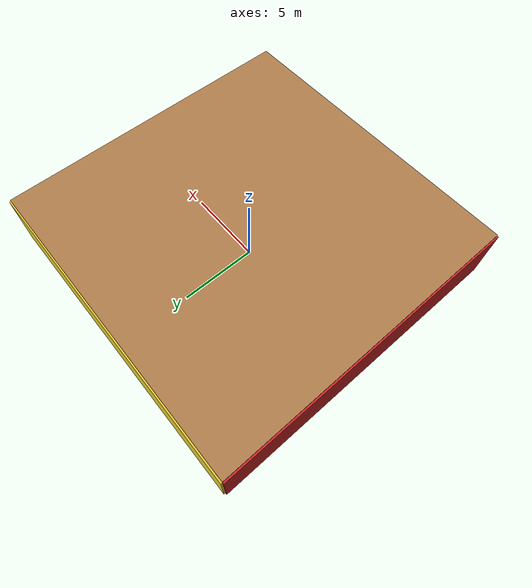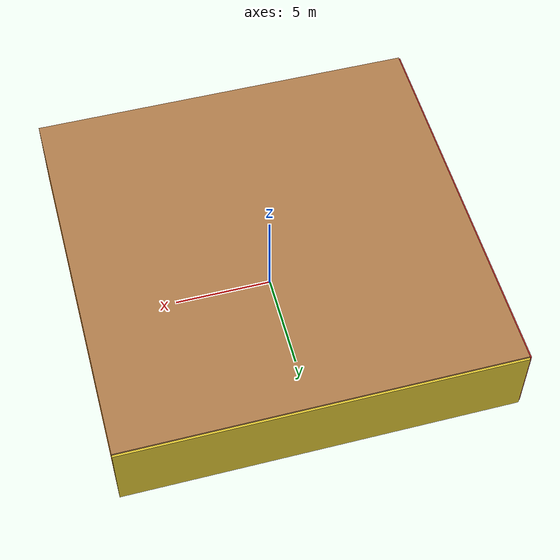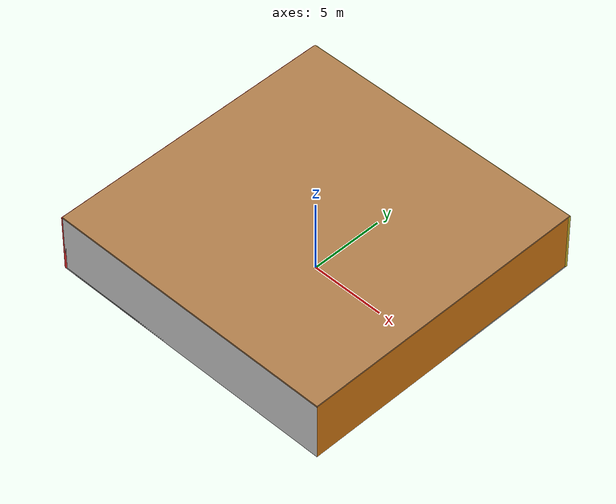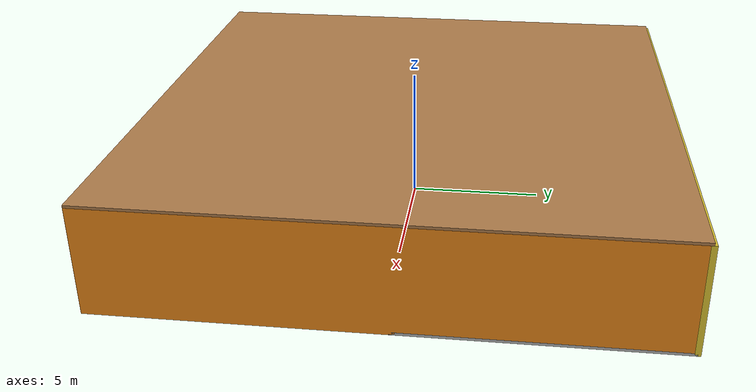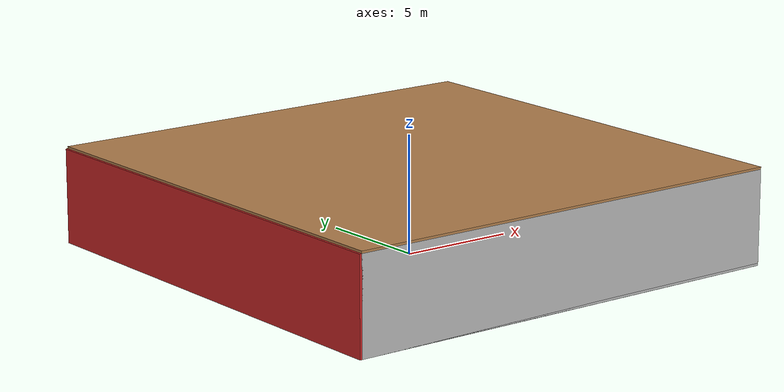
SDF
<sdf version="1.4">
 <world name="default">
  <physics type="ode">
   <max_step_size>0.001</max_step_size>
   <real_time_factor>1</real_time_factor>
   <real_time_update_rate>1000</real_time_update_rate>
   <gravity>0 0 -9.8</gravity>
  </physics>
  <scene><ambient>0.4 0.4 0.4 1</ambient><background>0.7 0.7 0.7 1</background><shadows>1</shadows></scene>
  <model name="Surrounding">
   <static>1</static>
   <link name="Ceiling">
    <collision name="Ceiling_Collision"><geometry><box><size>20 20 0.1</size></box></geometry></collision>
    <visual name="Ceiling_Visual">
     <geometry><box><size>20 20 0.1</size></box></geometry>
     <material>
      <script><uri>file://media/materials/scripts/gazebo.material</uri><name>Gazebo/WoodFloor</name></script>
     </material>
    </visual>
    <pose>0 0 4.05 0 0 0</pose>
   </link>
   <link name="Wall_South">
    <collision name="Wall_South_Collision">
     <geometry><box><size>20 0 4</size></box></geometry>
     <pose>0 0 2 0 -0 0</pose>
    </collision>
    <visual name="Wall_South_Visual">
     <pose>0 0 2 0 -0 0</pose>
     <geometry><box><size>20 0 4</size></box></geometry>
     <material>
      <script><uri>file://media/materials/scripts/gazebo.material</uri><name>Gazebo/PioneerBody</name></script>
     </material>
    </visual>
    <velocity_decay><linear>0</linear><angular>0</angular></velocity_decay>
    <pose>0 -10 0 0 -0 0</pose>
   </link>
   <link name="Wall_East">
    <collision name="Wall_21_Collision">
     <geometry><box><size>20 0 4</size></box></geometry>
     <pose>0 0 2 0 -0 0</pose>
    </collision>
    <visual name="Wall_21_Visual">
     <pose>0 0 2 0 -0 0</pose>
     <geometry><box><size>20 0 4</size></box></geometry>
     <material>
      <script><uri>file://media/materials/scripts/gazebo.material</uri><name>Gazebo/Orange</name></script>
     </material>
    </visual>
    <velocity_decay><linear>0</linear><angular>0</angular></velocity_decay>
    <pose>10 0 0 0 -0 1.5708</pose>
   </link>
   <link name="Wall_North">
    <collision name="Wall_22_Collision">
     <geometry><box><size>20 0.2 4</size></box></geometry>
     <pose>0 0 2 0 -0 0</pose>
    </collision>
    <visual name="Wall_22_Visual">
     <pose>0 0 2 0 -0 0</pose>
     <geometry><box><size>20 0.2 4</size></box></geometry>
     <material>
      <script><uri>file://media/materials/scripts/gazebo.material</uri><name>Gazebo/ZincYellow</name></script>
     </material>
    </visual>
    <velocity_decay><linear>0</linear><angular>0</angular></velocity_decay>
    <pose>0 10 0 0 -0 0</pose>
   </link>
   <link name="Wall_West">
    <collision name="Wall_23_Collision">
     <geometry><box><size>20 0.2 4</size></box></geometry>
     <pose>0 0 2 0 -0 0</pose>
    </collision>
    <visual name="Wall_23_Visual">
     <pose>0 0 2 0 -0 0</pose>
     <geometry><box><size>20 0.2 4</size></box></geometry>
     <material>
      <script><uri>file://media/materials/scripts/gazebo.material</uri><name>Gazebo/RedBright</name></script>
     </material>
    </visual>
    <velocity_decay><linear>0</linear><angular>0</angular></velocity_decay>
    <pose>-10 0 0 0 0 -1.5708</pose>
   </link>
   <link name="Ground_link">
    <collision name="collision">
     <pose>0 0 .05 0 -0 0</pose>
     <geometry><box><size>20 20 0.1</size></box></geometry>
    </collision>
    <visual name="visual">
     <pose>0 0 .05 0 -0 0</pose>
     <geometry><box><size>20 20 0.1</size></box></geometry>
     <material>
      <script><uri>file://media/materials/scripts/gazebo.material</uri><name>Gazebo/Pioneer2Body</name></script>
     </material>
    </visual>
   </link>
   <static>1</static>
  </model>
  <spherical_coordinates>
   <surface_model>EARTH_WGS84</surface_model>
   <latitude_deg>0</latitude_deg>
   <longitude_deg>0</longitude_deg>
   <elevation>0</elevation>
   <heading_deg>0</heading_deg>
  </spherical_coordinates>
  <light name="lightball_0" type="diffuse">
   <diffuse>0.8 0.8 0.8 1</diffuse>
   <specular>0.2 0.2 0.2 1</specular>
   <attenuation>
    <range>100</range>
    <constant>0.7</constant>
    <linear>0.01</linear>
    <quadratic>0.001</quadratic>
   </attenuation>
   <direction>-0.5 0.1 -0.9</direction>
   <pose>-5.45118216523 -6.58985745221 3.68598259633 0 0 0</pose>
  </light>
  <light name="lightball_1" type="diffuse">
   <diffuse>0.8 0.8 0.8 1</diffuse>
   <specular>0.2 0.2 0.2 1</specular>
   <attenuation>
    <range>100</range>
    <constant>0.7</constant>
    <linear>0.01</linear>
    <quadratic>0.001</quadratic>
   </attenuation>
   <direction>-0.5 0.1 -0.9</direction>
   <pose>-8.2207409239 3.88018321329 2.6270943374 0 0 0</pose>
  </light>
  <light name="lightball_2" type="diffuse">
   <diffuse>0.8 0.8 0.8 1</diffuse>
   <specular>0.2 0.2 0.2 1</specular>
   <attenuation>
    <range>100</range>
    <constant>0.7</constant>
    <linear>0.01</linear>
    <quadratic>0.001</quadratic>
   </attenuation>
   <direction>-0.5 0.1 -0.9</direction>
   <pose>7.95989786165 7.44421511109 3.78882625291 0 0 0</pose>
  </light>
  <light name="lightball_3" type="diffuse">
   <diffuse>0.8 0.8 0.8 1</diffuse>
   <specular>0.2 0.2 0.2 1</specular>
   <attenuation>
    <range>100</range>
    <constant>0.7</constant>
    <linear>0.01</linear>
    <quadratic>0.001</quadratic>
   </attenuation>
   <direction>-0.5 0.1 -0.9</direction>
   <pose>-3.97760880634 0.343162582029 3.31153154876 0 0 0</pose>
  </light>
  <light name="lightball_4" type="diffuse">
   <diffuse>0.8 0.8 0.8 1</diffuse>
   <specular>0.2 0.2 0.2 1</specular>
   <attenuation>
    <range>100</range>
    <constant>0.7</constant>
    <linear>0.01</linear>
    <quadratic>0.001</quadratic>
   </attenuation>
   <direction>-0.5 0.1 -0.9</direction>
   <pose>6.90180538089 -1.41246254442 1.69713332366 0 0 0</pose>
  </light>
  <light name="lightball_5" type="diffuse">
   <diffuse>0.8 0.8 0.8 1</diffuse>
   <specular>0.2 0.2 0.2 1</specular>
   <attenuation>
    <range>100</range>
    <constant>0.7</constant>
    <linear>0.01</linear>
    <quadratic>0.001</quadratic>
   </attenuation>
   <direction>-0.5 0.1 -0.9</direction>
   <pose>8.22021685377 0.59454969342 3.32174207648 0 0 0</pose>
  </light>
  <light name="lightball_6" type="diffuse">
   <diffuse>0.8 0.8 0.8 1</diffuse>
   <specular>0.2 0.2 0.2 1</specular>
   <attenuation>
    <range>100</range>
    <constant>0.7</constant>
    <linear>0.01</linear>
    <quadratic>0.001</quadratic>
   </attenuation>
   <direction>-0.5 0.1 -0.9</direction>
   <pose>7.01732595873 8.03534211438 2.55839665882 0 0 0</pose>
  </light>
  <include>
   <uri>model://construction_cone</uri>
   <pose>-8.29158738718 -6.69815074154 0 0 0 1.47586668204</pose>
  </include>
  <include>
   <uri>model://robocup_3Dsim_goal</uri>
   <pose>-8.0933489487 0.786913857767 0 0 0 2.32267072018</pose>
  </include>
  <include><uri>model://table</uri><pose>-7.82735389828 5.46256438809 0 0 0 2.79351127055</pose></include>
  <include>
   <uri>model://robocup_3Dsim_goal</uri>
   <pose>-3.3704613528 -8.6120000845 0 0 0 3.06876772796</pose>
  </include>
  <include>
   <uri>model://textured_shapes</uri>
   <pose>-5.2262462995 -5.17125368227 0 0 0 1.31693297301</pose>
  </include>
  <include>
   <uri>model://textured_shapes</uri>
   <pose>-1.62165526634 -4.22613220528 0 0 0 1.43842136008</pose>
  </include>
  <include>
   <uri>model://construction_cone</uri>
   <pose>-1.31191726352 -2.33416105494 0 0 0 1.19708754912</pose>
  </include>
  <include>
   <uri>model://construction_cone</uri>
   <pose>0.800105766222 1.99241054148 0 0 0 2.00246363214</pose>
  </include>
  <include><uri>model://table</uri><pose>4.84942363776 2.14025685993 0 0 0 1.16356718556</pose></include>
 </world>
</sdf>

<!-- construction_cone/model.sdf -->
<sdf version="1.5">
  <model name="Construction Cone">
    <link name="link">
      <collision name="collision">
        <geometry>
          <mesh>
            <scale>10 10 10</scale>
            <uri>file://isr-testbed/construction_cone/meshes/construction_cone.dae</uri>
          </mesh>
        </geometry>
      </collision>
      <visual name="visual">
        <geometry>
          <mesh>
            <scale>10 10 10</scale>
            <uri>file://isr-testbed/construction_cone/meshes/construction_cone.dae</uri>
          </mesh>
        </geometry>
      </visual>
    </link>
  </model>
</sdf>

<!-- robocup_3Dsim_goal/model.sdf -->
<sdf version="1.5">
  <model name="robocup_3d_goal">
    <static>true</static>
    <link name="left_post">
      <pose>0 1.05 0.45 0 0 0</pose>
      <collision name="collision">
        <geometry>
          <cylinder>
            <radius>0.05</radius>
            <length>0.9</length>
          </cylinder>
        </geometry>
      </collision>
      <visual name="visual">
        <geometry>
          <cylinder>
            <radius>0.05</radius>
            <length>0.9</length>
          </cylinder>
        </geometry>
        <material>
          <script>
            <uri>file://media/materials/scripts/gazebo.material</uri>
            <name>Gazebo/ZincYellow</name>
          </script>
        </material>
      </visual>
    </link>
    <link name="left_support_horiz_lower">
      <pose>0.30 1.05 0.01 0 0 0</pose>
      <collision name="collision">
        <geometry>
          <box>
            <size>0.50 0.02 0.02</size>
          </box>
        </geometry>
      </collision>
      <visual name="visual">
        <geometry>
          <box>
            <size>0.50 0.02 0.02</size>
          </box>
        </geometry>
        <material>
          <script>
            <uri>file://media/materials/scripts/gazebo.material</uri>
            <name>Gazebo/White</name>
          </script>
        </material>
      </visual>
    </link>
    <link name="left_support_horiz_upper">
      <pose>0.30 1.05 0.79 0 0 0</pose>
      <collision name="collision">
        <geometry>
          <box>
            <size>0.50 0.02 0.02</size>
          </box>
        </geometry>
      </collision>
      <visual name="visual">
        <geometry>
          <box>
            <size>0.50 0.02 0.02</size>
          </box>
        </geometry>
        <material>
          <script>
            <uri>file://media/materials/scripts/gazebo.material</uri>
            <name>Gazebo/White</name>
          </script>
        </material>
      </visual>
    </link>
    <link name="left_support_vertical">
      <pose>0.56 1.05 0.4 0 1.5708 0</pose>
      <collision name="collision">
        <geometry>
          <box>
            <size>0.80 0.02 0.02</size>
          </box>
        </geometry>
      </collision>
      <visual name="visual">
        <geometry>
          <box>
            <size>0.80 0.02 0.02</size>
          </box>
        </geometry>
        <material>
          <script>
            <uri>file://media/materials/scripts/gazebo.material</uri>
            <name>Gazebo/White</name>
          </script>
        </material>
      </visual>
    </link>
    <link name="right_support_horiz_lower">
      <pose>0.30 -1.05 0.01 0 0 0</pose>
      <collision name="collision">
        <geometry>
          <box>
            <size>0.50 0.02 0.02</size>
          </box>
        </geometry>
      </collision>
      <visual name="visual">
        <geometry>
          <box>
            <size>0.50 0.02 0.02</size>
          </box>
        </geometry>
        <material>
          <script>
            <uri>file://media/materials/scripts/gazebo.material</uri>
            <name>Gazebo/White</name>
          </script>
        </material>
      </visual>
    </link>
    <link name="right_support_horiz_upper">
      <pose>0.30 -1.05 0.79 0 0 0</pose>
      <collision name="collision">
        <geometry>
          <box>
            <size>0.50 0.02 0.02</size>
          </box>
        </geometry>
      </collision>
      <visual name="visual">
        <geometry>
          <box>
            <size>0.50 0.02 0.02</size>
          </box>
        </geometry>
        <material>
          <script>
            <uri>file://media/materials/scripts/gazebo.material</uri>
            <name>Gazebo/White</name>
          </script>
        </material>
      </visual>
    </link>
    <link name="right_support_vertical">
      <pose>0.56 -1.05 0.4 0 1.5708 0</pose>
      <collision name="collision">
        <geometry>
          <box>
            <size>0.80 0.02 0.02</size>
          </box>
        </geometry>
      </collision>
      <visual name="visual">
        <geometry>
          <box>
            <size>0.80 0.02 0.02</size>
          </box>
        </geometry>
        <material>
          <script>
            <uri>file://media/materials/scripts/gazebo.material</uri>
            <name>Gazebo/White</name>
          </script>
        </material>
      </visual>
    </link>
    <link name="center_support_horiz_lower">
      <pose>0.56 0 0.01 0 1.5708 0</pose>
      <collision name="collision">
        <geometry>
          <box>
            <size>0.02 2.08 0.02</size>
          </box>
        </geometry>
      </collision>
      <visual name="visual">
        <geometry>
          <box>
            <size>0.02 2.08 0.02</size>
          </box>
        </geometry>
        <material>
          <script>
            <uri>file://media/materials/scripts/gazebo.material</uri>
            <name>Gazebo/White</name>
          </script>
        </material>
      </visual>
    </link>
    <link name="center_support_horiz_upper">
      <pose>0.56 0 0.79 0 1.5708 0</pose>
      <collision name="collision">
        <geometry>
          <box>
            <size>0.02 2.08 0.02</size>
          </box>
        </geometry>
      </collision>
      <visual name="visual">
        <geometry>
          <box>
            <size>0.02 2.08 0.02</size>
          </box>
        </geometry>
        <material>
          <script>
            <uri>file://media/materials/scripts/gazebo.material</uri>
            <name>Gazebo/White</name>
          </script>
        </material>
      </visual>
    </link>
    <link name="right_post">
      <pose>0 -1.05 0.45 0 0 0</pose>
      <collision name="collision">
        <geometry>
          <cylinder>
            <radius>0.05</radius>
            <length>0.9</length>
          </cylinder>
        </geometry>
      </collision>
      <visual name="visual">
        <geometry>
          <cylinder>
            <radius>0.05</radius>
            <length>0.9</length>
          </cylinder>
        </geometry>
        <material>
          <script>
            <uri>file://media/materials/scripts/gazebo.material</uri>
            <name>Gazebo/ZincYellow</name>
          </script>
        </material>
      </visual>
    </link>
    <link name="crossbar">
      <pose>0 0 0.85 1.57 1.57 0</pose>
      <collision name="collision">
        <geometry>
          <cylinder>
            <radius>0.05</radius>
            <length>2.0</length>
          </cylinder>
        </geometry>
      </collision>
      <visual name="visual">
        <geometry>
          <cylinder>
            <radius>0.05</radius>
            <length>2.0</length>
          </cylinder>
        </geometry>
        <material>
          <script>
            <uri>file://media/materials/scripts/gazebo.material</uri>
            <name>Gazebo/ZincYellow</name>
          </script>
        </material>
      </visual>
    </link>
    <link name="center_net">
      <pose>0.56 0 0.40 0 0 0</pose>
      <collision name="collision">
        <geometry>
          <box>
            <size>0.01 2.1 0.80</size>
          </box>
        </geometry>
      </collision>
      <visual name="visual">
        <geometry>
          <box>
            <size>0.01 2.1 0.80</size>
          </box>
        </geometry>
        <material>
          <script>
            <uri>model://../model_source/models/robocup09_spl_field/materials/scripts/</uri>
            <uri>model://../model_source/models/robocup09_spl_field/materials/textures/</uri>
            <name>RoboCup/Net</name>
          </script>
        </material>
      </visual>
    </link>
    <link name="left_net">
      <pose>0.30 1.05 0.40 0 0 0</pose>
      <collision name="collision">
        <geometry>
          <box>
            <size>0.50 0.01 0.76</size>
          </box>
        </geometry>
      </collision>
      <visual name="visual">
        <geometry>
          <box>
            <size>0.50 0.01 0.76</size>
          </box>
        </geometry>
        <material>
          <script>
            <uri>model://../model_source/models/robocup09_spl_field/materials/scripts/</uri>
            <uri>model://../model_source/models/robocup09_spl_field/materials/textures/</uri>
            <name>RoboCup/Net</name>
          </script>
        </material>
      </visual>
    </link>
    <link name="right_net">
      <pose>0.30 -1.05 0.40 0 0 0</pose>
      <collision name="collision">
        <geometry>
          <box>
            <size>0.50 0.01 0.76</size>
          </box>
        </geometry>
      </collision>
      <visual name="visual">
        <geometry>
          <box>
            <size>0.50 0.01 0.76</size>
          </box>
        </geometry>
        <material>
          <script>
            <uri>model://../model_source/models/robocup09_spl_field/materials/scripts/</uri>
            <uri>model://../model_source/models/robocup09_spl_field/materials/textures/</uri>
            <name>RoboCup/Net</name>
          </script>
        </material>
      </visual>
    </link>
  </model>
</sdf>

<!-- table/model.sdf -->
<sdf version="1.5">
  <model name="table">
    <static>true</static>
    <link name="link">
      <collision name="surface">
        <pose>0 0 1.0 0 0 0</pose>
        <geometry>
          <box>
            <size>1.5 0.8 0.03</size>
          </box>
        </geometry>
        <surface>
          <friction>
            <ode>
              <mu>0.6</mu>
              <mu2>0.6</mu2>
            </ode>
          </friction>
        </surface>
      </collision>
      <visual name="visual1">
        <pose>0 0 1.0 0 0 0</pose>
        <geometry>
          <box>
            <size>1.5 0.8 0.03</size>
          </box>
        </geometry>
        <material>
          <script>
            <uri>model://media/materials/scripts/gazebo.material</uri>
            <name>Gazebo/Wood</name>
          </script>
        </material>
      </visual>
      <collision name="front_left_leg">
        <pose>0.68 0.38 0.5 0 0 0</pose>
        <geometry>
          <cylinder>
            <radius>0.02</radius>
            <length>1.0</length>
          </cylinder>
        </geometry>
      </collision>
      <visual name="front_left_leg">
        <pose>0.68 0.38 0.5 0 0 0</pose>
        <geometry>
          <cylinder>
            <radius>0.02</radius>
            <length>1.0</length>
          </cylinder>
        </geometry>
        <material>
          <script>
            <uri>model://media/materials/scripts/gazebo.material</uri>
            <name>Gazebo/Grey</name>
          </script>
        </material>
      </visual>
      <collision name="front_right_leg">
        <pose>0.68 -0.38 0.5 0 0 0</pose>
        <geometry>
          <cylinder>
            <radius>0.02</radius>
            <length>1.0</length>
          </cylinder>
        </geometry>
      </collision>
      <visual name="front_right_leg">
        <pose>0.68 -0.38 0.5 0 0 0</pose>
        <geometry>
          <cylinder>
            <radius>0.02</radius>
            <length>1.0</length>
          </cylinder>
        </geometry>
        <material>
          <script>
            <uri>model://media/materials/scripts/gazebo.material</uri>
            <name>Gazebo/Grey</name>
          </script>
        </material>
      </visual>
      <collision name="back_right_leg">
        <pose>-0.68 -0.38 0.5 0 0 0</pose>
        <geometry>
          <cylinder>
            <radius>0.02</radius>
            <length>1.0</length>
          </cylinder>
        </geometry>
      </collision>
      <visual name="back_right_leg">
        <pose>-0.68 -0.38 0.5 0 0 0</pose>
        <geometry>
          <cylinder>
            <radius>0.02</radius>
            <length>1.0</length>
          </cylinder>
        </geometry>
        <material>
          <script>
            <uri>model://media/materials/scripts/gazebo.material</uri>
            <name>Gazebo/Grey</name>
          </script>
        </material>
      </visual>
      <collision name="back_left_leg">
        <pose>-0.68 0.38 0.5 0 0 0</pose>
        <geometry>
          <cylinder>
            <radius>0.02</radius>
            <length>1.0</length>
          </cylinder>
        </geometry>
      </collision>
      <visual name="back_left_leg">
        <pose>-0.68 0.38 0.5 0 0 0</pose>
        <geometry>
          <cylinder>
            <radius>0.02</radius>
            <length>1.0</length>
          </cylinder>
        </geometry>
        <material>
          <script>
            <uri>model://media/materials/scripts/gazebo.material</uri>
            <name>Gazebo/Grey</name>
          </script>
        </material>
      </visual>
    </link>
  </model>
</sdf>

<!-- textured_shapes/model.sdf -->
<sdf version="1.6">
  <model name="textured_shapes">
    <pose>0 0 0.5 0 0 0</pose>
    <link name="box">
      <pose>0 -1.5 0 0 0 0</pose>
      <collision name="collision">
        <geometry>
          <box>
            <size>1 1 1</size>
          </box>
        </geometry>
      </collision>
      <visual name="visual">
        <geometry>
          <box>
            <size>1 1 1</size>
          </box>
        </geometry>
        <material>
          <script>
            <uri>model://../model_source/models/textured_shapes/materials/scripts</uri>
            <uri>model://../model_source/models/textured_shapes/materials/textures</uri>
            <name>TexturedShape/Squares</name>
          </script>
        </material>
      </visual>
    </link>
    <link name="sphere">
      <collision name="collision">
        <geometry>
          <sphere>
            <radius>0.5</radius>
          </sphere>
        </geometry>
      </collision>
      <visual name="visual">
        <geometry>
          <sphere>
            <radius>0.5</radius>
          </sphere>
        </geometry>
        <material>
          <script>
            <uri>model://../model_source/models/textured_shapes/materials/scripts</uri>
            <uri>model://../model_source/models/textured_shapes/materials/textures</uri>
            <name>TexturedShape/Squares</name>
          </script>
        </material>
      </visual>
    </link>
    <link name="cylinder">
      <pose>0 1.5 0 0 0 0</pose>
      <collision name="collision">
        <geometry>
          <cylinder>
            <radius>0.5</radius>
            <length>1</length>
          </cylinder>
        </geometry>
      </collision>
      <visual name="visual">
        <geometry>
          <cylinder>
            <radius>0.5</radius>
            <length>1</length>
          </cylinder>
        </geometry>
        <material>
          <script>
            <uri>model://../model_source/models/textured_shapes/materials/scripts</uri>
            <uri>model://../model_source/models/textured_shapes/materials/textures</uri>
            <name>TexturedShape/Squares</name>
          </script>
        </material>
      </visual>
    </link>
  </model>
</sdf>
